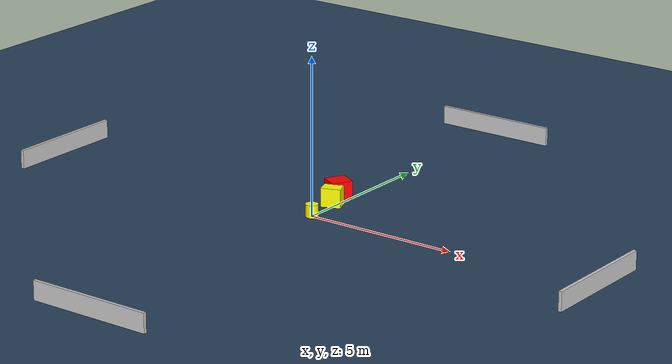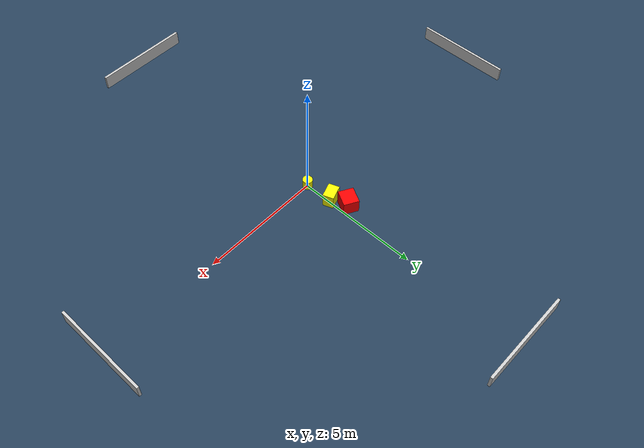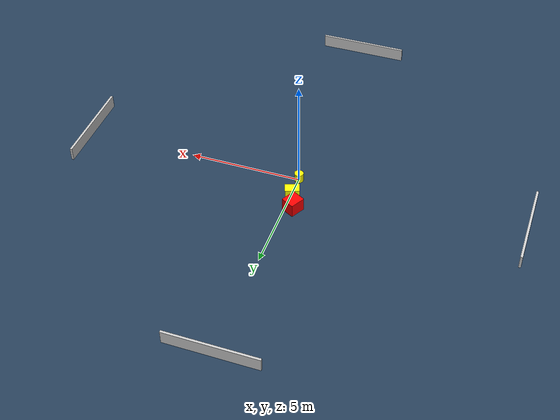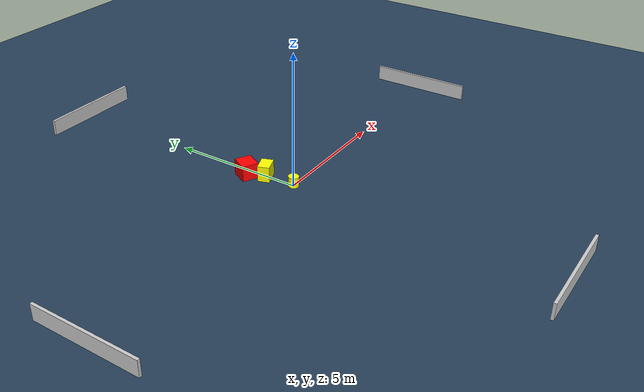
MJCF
<?xml version="1.0" ?>
<mujoco model="generated_environment">
  <option timestep="0.01" integrator="RK4" cone="elliptic"/>
  <default>
    <geom density="1"/>
  </default>
  <asset>
    <texture builtin="gradient" height="3072" name="skybox" rgb1="0.3 0.5 0.7" rgb2="0 0 0" type="skybox" width="512"/>
    <texture builtin="checker" height="300" name="groundplane" rgb1="0.2 0.3 0.4" rgb2="0.1 0.2 0.3" type="2d" width="300"/>
    <material name="groundplane" reflectance="0.2" texrepeat="5 5" texture="groundplane"/>
  </asset>
  <worldbody>
    <light dir="0 0 -1" directional="true" pos="0 0 1.5"/>
    <geom condim="3" friction="0.5 0.005 0.001" material="groundplane" name="floor" pos="0 0 0" size="0 0 0.05" type="plane"/>
    <body name="walls">
      <geom name="wall_1" condim="4" pos="-10.0 0.0 0.3" rgba="0.800000011920929 0.800000011920929 0.800000011920929 1.0" size="0.05 2.0 0.3" type="box"/>
      <geom name="wall_2" condim="4" pos="10.0 0.0 0.3" rgba="0.800000011920929 0.800000011920929 0.800000011920929 1.0" size="0.05 2.0 0.3" type="box"/>
      <geom name="wall_3" condim="4" pos="0.0 -10.0 0.3" rgba="0.800000011920929 0.800000011920929 0.800000011920929 1.0" size="2.0 0.05 0.3" type="box"/>
      <geom name="wall_4" condim="4" pos="0.0 10.0 0.3" rgba="0.800000011920929 0.800000011920929 0.800000011920929 1.0" size="2.0 0.05 0.3" type="box"/>
    </body>
    <body name="robot">
      <joint name="joint_x" type="slide" pos="0 0 0" axis="1 0 0"/>
      <joint name="joint_y" type="slide" pos="0 0 0" axis="0 1 0"/>
      <geom name="robot" type="cylinder" pos="0.0 0.0 0.2" size="0.2 0.2 0.0" mass="5.0" friction="1.0 0.005 0.0001" condim="4" rgba="1.0 1.0 0.0 1.0"/>
    </body>
    <body name="obstacle_1_movable">
      <geom name="obstacle_1_movable" condim="4" pos="-0.0873614674934433 1.147740841688118 0.3" euler="0 0 289.87593176203717" friction="0.0 0.005 0.001" rgba="1.0 1.0 0.0 1.0" size="0.22041482428910816 0.3113156114335 0.3" type="box" mass="0.1"/>
      <joint type="free"/>
    </body>
    <body name="obstacle_2_static">
      <geom name="obstacle_2_static" condim="4" pos="-0.34764899919212605 1.8012620603179201 0.3" euler="0 0 241.63771695418714" friction="0.0 0.005 0.001" rgba="1.0 0.0 0.0 1.0" size="0.3397198589905722 0.3106440421137441 0.3" type="box"/>
    </body>
  </worldbody>
  <actuator>
    <motor name="actuator_x" joint="joint_x" gear="1" ctrlrange="-1 1"/>
    <motor name="actuator_y" joint="joint_y" gear="1" ctrlrange="-1 1"/>
  </actuator>
</mujoco>
